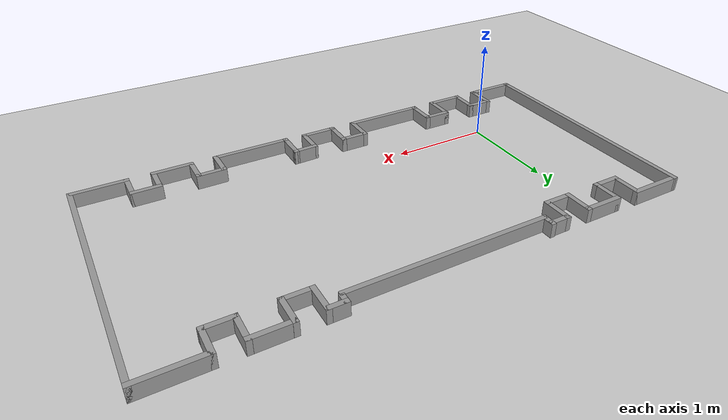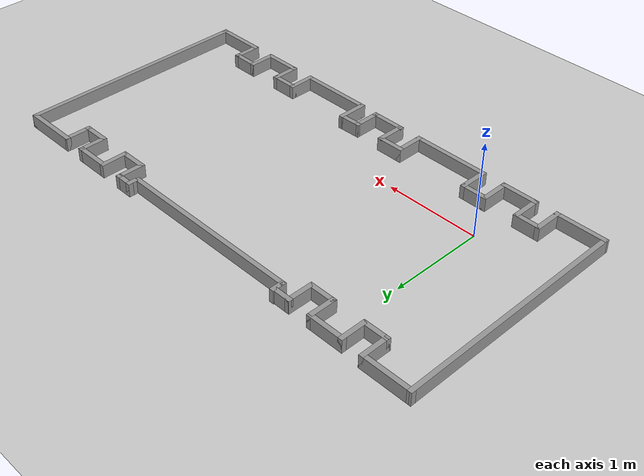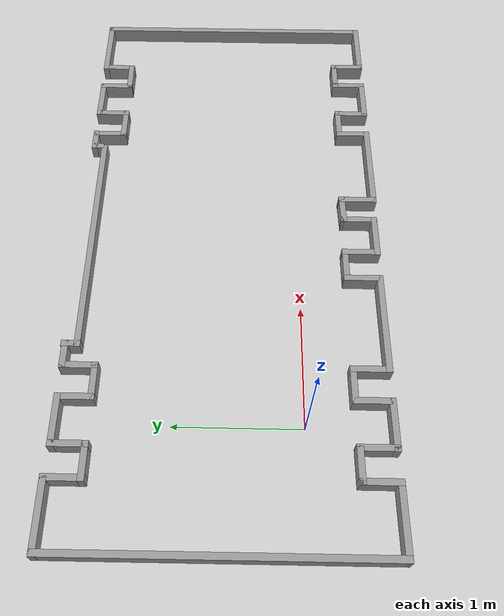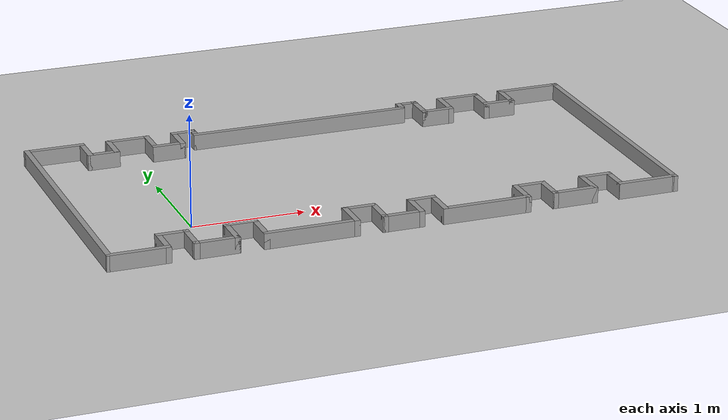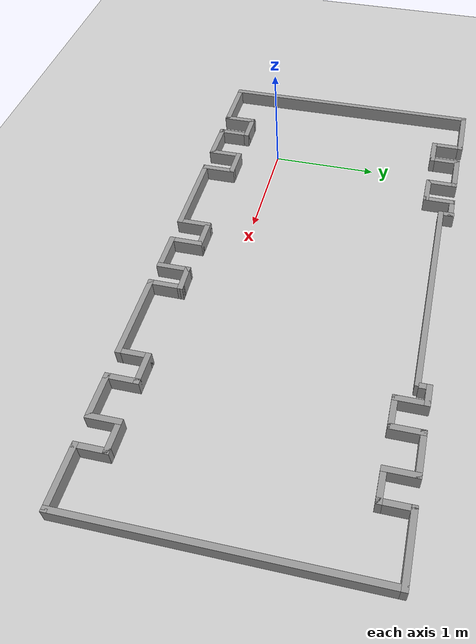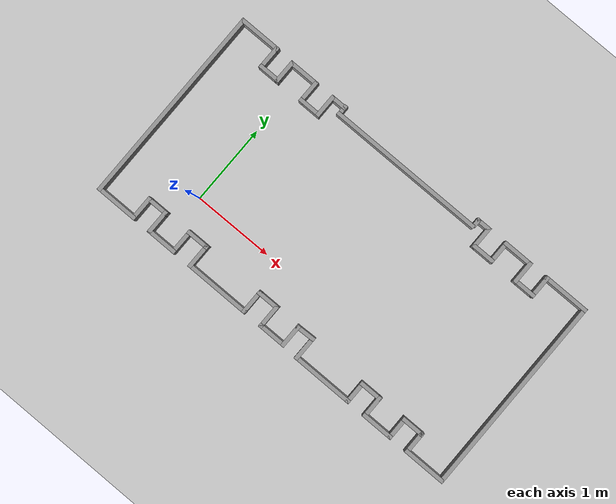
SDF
<sdf version="1.6">
 <world name="default">
  <model name="ground_plane">
   <static>1</static>
   <link name="link">
    <collision name="collision">
     <geometry><plane><normal>0 0 1</normal><size>100 100</size></plane></geometry>
     <surface>
      <contact><collide_bitmask>65535</collide_bitmask></contact>
      <friction><ode><mu>100</mu><mu2>50</mu2></ode></friction>
     </surface>
    </collision>
    <visual name="visual">
     <cast_shadows>0</cast_shadows>
     <geometry><plane><normal>0 0 1</normal><size>100 100</size></plane></geometry>
     <material>
      <script><uri>file://media/materials/scripts/gazebo.material</uri><name>Gazebo/Grey</name></script>
     </material>
    </visual>
   </link>
  </model>
  <light name="sun" type="directional">
   <pose>0 0 10 0 -0 0</pose>
   <diffuse>0.8 0.8 0.8 1</diffuse>
   <specular>0.2 0.2 0.2 1</specular>
   <attenuation>
    <range>1000</range>
    <constant>0.9</constant>
    <linear>0.01</linear>
    <quadratic>0.001</quadratic>
   </attenuation>
   <direction>-0.5 0.1 -0.9</direction>
  </light>
  <gravity>0 0 -9.8</gravity>
  <magnetic_field>6e-06 2.3e-05 -4.2e-05</magnetic_field>
  <atmosphere type="adiabatic"/>
  <physics name="default_physics" default="0" type="ode">
   <max_step_size>0.001</max_step_size>
   <real_time_factor>1</real_time_factor>
   <real_time_update_rate>1000</real_time_update_rate>
  </physics>
  <scene><ambient>0.4 0.4 0.4 1</ambient><background>0.7 0.7 0.7 1</background><shadows>1</shadows></scene>
  <audio><device>default</device></audio>
  <spherical_coordinates>
   <surface_model>EARTH_WGS84</surface_model>
   <latitude_deg>0</latitude_deg>
   <longitude_deg>0</longitude_deg>
   <elevation>0</elevation>
   <heading_deg>0</heading_deg>
  </spherical_coordinates>
  <model name="type2">
   <pose>1.61163 0.598256 0 0 -0 0</pose>
   <link name="Wall_0">
    <collision name="Wall_0_Collision">
     <geometry><box><size>0.545377 0.05 0.14</size></box></geometry>
     <pose>0 0 0.07 0 -0 0</pose>
    </collision>
    <visual name="Wall_0_Visual">
     <pose>0 0 0.07 0 -0 0</pose>
     <geometry><box><size>0.545377 0.05 0.14</size></box></geometry>
     <material>
      <script><uri>file://media/materials/scripts/gazebo.material</uri><name>Gazebo/Grey</name></script>
      <ambient>1 1 1 1</ambient>
     </material>
     <meta><layer>0</layer></meta>
    </visual>
    <pose>-2.27491 1.25397 0 0 -0 0</pose>
   </link>
   <link name="Wall_100">
    <collision name="Wall_100_Collision">
     <geometry><box><size>0.3 0.05 0.14</size></box></geometry>
     <pose>0 0 0.07 0 -0 0</pose>
    </collision>
    <visual name="Wall_100_Visual">
     <pose>0 0 0.07 0 -0 0</pose>
     <geometry><box><size>0.3 0.05 0.14</size></box></geometry>
     <material>
      <script><uri>file://media/materials/scripts/gazebo.material</uri><name>Gazebo/Grey</name></script>
      <ambient>1 1 1 1</ambient>
     </material>
     <meta><layer>0</layer></meta>
    </visual>
    <pose>1.11659 1.11397 0 0 -0 -1.5708</pose>
   </link>
   <link name="Wall_102">
    <collision name="Wall_102_Collision">
     <geometry><box><size>0.2 0.05 0.14</size></box></geometry>
     <pose>0 0 0.07 0 -0 0</pose>
    </collision>
    <visual name="Wall_102_Visual">
     <pose>0 0 0.07 0 -0 0</pose>
     <geometry><box><size>0.2 0.05 0.14</size></box></geometry>
     <material>
      <script><uri>file://media/materials/scripts/gazebo.material</uri><name>Gazebo/Grey</name></script>
      <ambient>1 1 1 1</ambient>
     </material>
     <meta><layer>0</layer></meta>
    </visual>
    <pose>1.04159 1.23897 0 0 -0 3.14159</pose>
   </link>
   <link name="Wall_114">
    <collision name="Wall_114_Collision">
     <geometry><box><size>0.11 0.05 0.14</size></box></geometry>
     <pose>0 0 0.07 0 -0 0</pose>
    </collision>
    <visual name="Wall_114_Visual">
     <pose>0 0 0.07 0 -0 0</pose>
     <geometry><box><size>0.11 0.05 0.14</size></box></geometry>
     <material>
      <script><uri>file://media/materials/scripts/gazebo.material</uri><name>Gazebo/Grey</name></script>
      <ambient>1 1 1 1</ambient>
     </material>
     <meta><layer>0</layer></meta>
    </visual>
    <pose>0.966594 1.20897 0 0 -0 -1.5708</pose>
   </link>
   <link name="Wall_116">
    <collision name="Wall_116_Collision">
     <geometry><box><size>2.01 0.05 0.14</size></box></geometry>
     <pose>0 0 0.07 0 -0 0</pose>
    </collision>
    <visual name="Wall_116_Visual">
     <pose>0 0 0.07 0 -0 0</pose>
     <geometry><box><size>2.01 0.05 0.14</size></box></geometry>
     <material>
      <script><uri>file://media/materials/scripts/gazebo.material</uri><name>Gazebo/Grey</name></script>
      <ambient>1 1 1 1</ambient>
     </material>
     <meta><layer>0</layer></meta>
    </visual>
    <pose>-0.027406 1.14697 0 0 -0 0</pose>
   </link>
   <link name="Wall_118">
    <collision name="Wall_118_Collision">
     <geometry><box><size>0.15 0.05 0.14</size></box></geometry>
     <pose>0 0 0.07 0 -0 0</pose>
    </collision>
    <visual name="Wall_118_Visual">
     <pose>0 0 0.07 0 -0 0</pose>
     <geometry><box><size>0.15 0.05 0.14</size></box></geometry>
     <material>
      <script><uri>file://media/materials/scripts/gazebo.material</uri><name>Gazebo/Grey</name></script>
      <ambient>1 1 1 1</ambient>
     </material>
     <meta><layer>0</layer></meta>
    </visual>
    <pose>-1.00741 1.19697 0 0 -0 1.5708</pose>
   </link>
   <link name="Wall_160">
    <collision name="Wall_160_Collision">
     <geometry><box><size>0.22 0.05 0.14</size></box></geometry>
     <pose>0 0 0.07 0 -0 0</pose>
    </collision>
    <visual name="Wall_160_Visual">
     <pose>0 0 0.07 0 -0 0</pose>
     <geometry><box><size>0.22 0.05 0.14</size></box></geometry>
     <material>
      <script><uri>file://media/materials/scripts/gazebo.material</uri><name>Gazebo/Grey</name></script>
      <ambient>1 1 1 1</ambient>
     </material>
     <meta><layer>0</layer></meta>
    </visual>
    <pose>-1.09941 1.23897 0 0 -0 0</pose>
   </link>
   <link name="Wall_162">
    <collision name="Wall_162_Collision">
     <geometry><box><size>0.3 0.05 0.14</size></box></geometry>
     <pose>0 0 0.07 0 -0 0</pose>
    </collision>
    <visual name="Wall_162_Visual">
     <pose>0 0 0.07 0 -0 0</pose>
     <geometry><box><size>0.3 0.05 0.14</size></box></geometry>
     <material>
      <script><uri>file://media/materials/scripts/gazebo.material</uri><name>Gazebo/Grey</name></script>
      <ambient>1 1 1 1</ambient>
     </material>
     <meta><layer>0</layer></meta>
    </visual>
    <pose>-1.18441 1.11397 0 0 -0 1.5708</pose>
   </link>
   <link name="Wall_164">
    <collision name="Wall_164_Collision">
     <geometry><box><size>0.3 0.05 0.14</size></box></geometry>
     <pose>0 0 0.07 0 -0 0</pose>
    </collision>
    <visual name="Wall_164_Visual">
     <pose>0 0 0.07 0 -0 0</pose>
     <geometry><box><size>0.3 0.05 0.14</size></box></geometry>
     <material>
      <script><uri>file://media/materials/scripts/gazebo.material</uri><name>Gazebo/Grey</name></script>
      <ambient>1 1 1 1</ambient>
     </material>
     <meta><layer>0</layer></meta>
    </visual>
    <pose>-1.30941 0.98897 0 0 -0 3.14159</pose>
   </link>
   <link name="Wall_167">
    <collision name="Wall_167_Collision">
     <geometry><box><size>0.3 0.05 0.14</size></box></geometry>
     <pose>0 0 0.07 0 -0 0</pose>
    </collision>
    <visual name="Wall_167_Visual">
     <pose>0 0 0.07 0 -0 0</pose>
     <geometry><box><size>0.3 0.05 0.14</size></box></geometry>
     <material>
      <script><uri>file://media/materials/scripts/gazebo.material</uri><name>Gazebo/Grey</name></script>
      <ambient>1 1 1 1</ambient>
     </material>
     <meta><layer>0</layer></meta>
    </visual>
    <pose>-1.43441 1.11397 0 0 -0 -1.5708</pose>
   </link>
   <link name="Wall_169">
    <collision name="Wall_169_Collision">
     <geometry><box><size>0.403 0.05 0.14</size></box></geometry>
     <pose>0 0 0.07 0 -0 0</pose>
    </collision>
    <visual name="Wall_169_Visual">
     <pose>0 0 0.07 0 -0 0</pose>
     <geometry><box><size>0.403 0.05 0.14</size></box></geometry>
     <material>
      <script><uri>file://media/materials/scripts/gazebo.material</uri><name>Gazebo/Grey</name></script>
      <ambient>1 1 1 1</ambient>
     </material>
     <meta><layer>0</layer></meta>
    </visual>
    <pose>-1.61091 1.23897 0 0 -0 0</pose>
   </link>
   <link name="Wall_17">
    <collision name="Wall_17_Collision">
     <geometry><box><size>0.318 0.05 0.14</size></box></geometry>
     <pose>0 0 0.07 0 -0 0</pose>
    </collision>
    <visual name="Wall_17_Visual">
     <pose>0 0 0.07 0 -0 0</pose>
     <geometry><box><size>0.318 0.05 0.14</size></box></geometry>
     <material>
      <script><uri>file://media/materials/scripts/gazebo.material</uri><name>Gazebo/Grey</name></script>
      <ambient>1 1 1 1</ambient>
     </material>
     <meta><layer>0</layer></meta>
    </visual>
    <pose>-1.77741 -1.10703 0 0 -0 1.5708</pose>
   </link>
   <link name="Wall_171">
    <collision name="Wall_171_Collision">
     <geometry><box><size>0.3 0.05 0.14</size></box></geometry>
     <pose>0 0 0.07 0 -0 0</pose>
    </collision>
    <visual name="Wall_171_Visual">
     <pose>0 0 0.07 0 -0 0</pose>
     <geometry><box><size>0.3 0.05 0.14</size></box></geometry>
     <material>
      <script><uri>file://media/materials/scripts/gazebo.material</uri><name>Gazebo/Grey</name></script>
      <ambient>1 1 1 1</ambient>
     </material>
     <meta><layer>0</layer></meta>
    </visual>
    <pose>-1.78741 1.11397 0 0 -0 -1.5708</pose>
   </link>
   <link name="Wall_174">
    <collision name="Wall_174_Collision">
     <geometry><box><size>0.29 0.05 0.14</size></box></geometry>
     <pose>0 0 0.07 0 -0 0</pose>
    </collision>
    <visual name="Wall_174_Visual">
     <pose>0 0 0.07 0 -0 0</pose>
     <geometry><box><size>0.29 0.05 0.14</size></box></geometry>
     <material>
      <script><uri>file://media/materials/scripts/gazebo.material</uri><name>Gazebo/Grey</name></script>
      <ambient>1 1 1 1</ambient>
     </material>
     <meta><layer>0</layer></meta>
    </visual>
    <pose>-1.90741 0.98897 0 0 -0 0</pose>
   </link>
   <link name="Wall_176">
    <collision name="Wall_176_Collision">
     <geometry><box><size>0.315 0.05 0.14</size></box></geometry>
     <pose>0 0 0.07 0 -0 0</pose>
    </collision>
    <visual name="Wall_176_Visual">
     <pose>0 0 0.07 0 -0 0</pose>
     <geometry><box><size>0.315 0.05 0.14</size></box></geometry>
     <material>
      <script><uri>file://media/materials/scripts/gazebo.material</uri><name>Gazebo/Grey</name></script>
      <ambient>1 1 1 1</ambient>
     </material>
     <meta><layer>0</layer></meta>
    </visual>
    <pose>-2.02741 1.12147 0 0 -0 1.5708</pose>
   </link>
   <link name="Wall_19">
    <collision name="Wall_19_Collision">
     <geometry><box><size>0.4 0.05 0.14</size></box></geometry>
     <pose>0 0 0.07 0 -0 0</pose>
    </collision>
    <visual name="Wall_19_Visual">
     <pose>0 0 0.07 0 -0 0</pose>
     <geometry><box><size>0.4 0.05 0.14</size></box></geometry>
     <material>
      <script><uri>file://media/materials/scripts/gazebo.material</uri><name>Gazebo/Grey</name></script>
      <ambient>1 1 1 1</ambient>
     </material>
     <meta><layer>0</layer></meta>
    </visual>
    <pose>-1.60241 -1.24103 0 0 -0 0</pose>
   </link>
   <link name="Wall_2">
    <collision name="Wall_2_Collision">
     <geometry><box><size>2.54601 0.05 0.14</size></box></geometry>
     <pose>0 0 0.07 0 -0 0</pose>
    </collision>
    <visual name="Wall_2_Visual">
     <pose>0 0 0.07 0 -0 0</pose>
     <geometry><box><size>2.54601 0.05 0.14</size></box></geometry>
     <material>
      <script><uri>file://media/materials/scripts/gazebo.material</uri><name>Gazebo/Grey</name></script>
      <ambient>1 1 1 1</ambient>
     </material>
     <meta><layer>0</layer></meta>
    </visual>
    <pose>-2.51941 0.00597 0 0 -0 -1.56839</pose>
   </link>
   <link name="Wall_21">
    <collision name="Wall_21_Collision">
     <geometry><box><size>0.325 0.05 0.14</size></box></geometry>
     <pose>0 0 0.07 0 -0 0</pose>
    </collision>
    <visual name="Wall_21_Visual">
     <pose>0 0 0.07 0 -0 0</pose>
     <geometry><box><size>0.325 0.05 0.14</size></box></geometry>
     <material>
      <script><uri>file://media/materials/scripts/gazebo.material</uri><name>Gazebo/Grey</name></script>
      <ambient>1 1 1 1</ambient>
     </material>
     <meta><layer>0</layer></meta>
    </visual>
    <pose>-1.42741 -1.10353 0 0 -0 1.5708</pose>
   </link>
   <link name="Wall_25">
    <collision name="Wall_25_Collision">
     <geometry><box><size>0.3 0.05 0.14</size></box></geometry>
     <pose>0 0 0.07 0 -0 0</pose>
    </collision>
    <visual name="Wall_25_Visual">
     <pose>0 0 0.07 0 -0 0</pose>
     <geometry><box><size>0.3 0.05 0.14</size></box></geometry>
     <material>
      <script><uri>file://media/materials/scripts/gazebo.material</uri><name>Gazebo/Grey</name></script>
      <ambient>1 1 1 1</ambient>
     </material>
     <meta><layer>0</layer></meta>
    </visual>
    <pose>-1.30241 -0.96603 0 0 -0 3.14159</pose>
   </link>
   <link name="Wall_28">
    <collision name="Wall_28_Collision">
     <geometry><box><size>0.325 0.05 0.14</size></box></geometry>
     <pose>0 0 0.07 0 -0 0</pose>
    </collision>
    <visual name="Wall_28_Visual">
     <pose>0 0 0.07 0 -0 0</pose>
     <geometry><box><size>0.325 0.05 0.14</size></box></geometry>
     <material>
      <script><uri>file://media/materials/scripts/gazebo.material</uri><name>Gazebo/Grey</name></script>
      <ambient>1 1 1 1</ambient>
     </material>
     <meta><layer>0</layer></meta>
    </visual>
    <pose>-1.17741 -1.10353 0 0 -0 -1.5708</pose>
   </link>
   <link name="Wall_31">
    <collision name="Wall_31_Collision">
     <geometry><box><size>0.843 0.05 0.14</size></box></geometry>
     <pose>0 0 0.07 0 -0 0</pose>
    </collision>
    <visual name="Wall_31_Visual">
     <pose>0 0 0.07 0 -0 0</pose>
     <geometry><box><size>0.843 0.05 0.14</size></box></geometry>
     <material>
      <script><uri>file://media/materials/scripts/gazebo.material</uri><name>Gazebo/Grey</name></script>
      <ambient>1 1 1 1</ambient>
     </material>
     <meta><layer>0</layer></meta>
    </visual>
    <pose>-0.780906 -1.24103 0 0 -0 0</pose>
   </link>
   <link name="Wall_326">
    <collision name="Wall_326_Collision">
     <geometry><box><size>0.6 0.05 0.14</size></box></geometry>
     <pose>0 0 0.07 0 -0 0</pose>
    </collision>
    <visual name="Wall_326_Visual">
     <pose>0 0 0.07 0 -0 0</pose>
     <geometry><box><size>0.6 0.05 0.14</size></box></geometry>
     <material>
      <script><uri>file://media/materials/scripts/gazebo.material</uri><name>Gazebo/Grey</name></script>
      <ambient>1 1 1 1</ambient>
     </material>
     <meta><layer>0</layer></meta>
    </visual>
    <pose>2.24759 1.23897 0 0 -0 0</pose>
   </link>
   <link name="Wall_329">
    <collision name="Wall_329_Collision">
     <geometry><box><size>0.416 0.05 0.14</size></box></geometry>
     <pose>0 0 0.07 0 -0 0</pose>
    </collision>
    <visual name="Wall_329_Visual">
     <pose>0 0 0.07 0 -0 0</pose>
     <geometry><box><size>0.416 0.05 0.14</size></box></geometry>
     <material>
      <script><uri>file://media/materials/scripts/gazebo.material</uri><name>Gazebo/Grey</name></script>
      <ambient>1 1 1 1</ambient>
     </material>
     <meta><layer>0</layer></meta>
    </visual>
    <pose>1.58559 -1.25403 0 0 -0 3.14159</pose>
   </link>
   <link name="Wall_33">
    <collision name="Wall_33_Collision">
     <geometry><box><size>0.318 0.05 0.14</size></box></geometry>
     <pose>0 0 0.07 0 -0 0</pose>
    </collision>
    <visual name="Wall_33_Visual">
     <pose>0 0 0.07 0 -0 0</pose>
     <geometry><box><size>0.318 0.05 0.14</size></box></geometry>
     <material>
      <script><uri>file://media/materials/scripts/gazebo.material</uri><name>Gazebo/Grey</name></script>
      <ambient>1 1 1 1</ambient>
     </material>
     <meta><layer>0</layer></meta>
    </visual>
    <pose>-0.384406 -1.10703 0 0 -0 1.5708</pose>
   </link>
   <link name="Wall_36">
    <collision name="Wall_36_Collision">
     <geometry><box><size>0.3 0.05 0.14</size></box></geometry>
     <pose>0 0 0.07 0 -0 0</pose>
    </collision>
    <visual name="Wall_36_Visual">
     <pose>0 0 0.07 0 -0 0</pose>
     <geometry><box><size>0.3 0.05 0.14</size></box></geometry>
     <material>
      <script><uri>file://media/materials/scripts/gazebo.material</uri><name>Gazebo/Grey</name></script>
      <ambient>1 1 1 1</ambient>
     </material>
     <meta><layer>0</layer></meta>
    </visual>
    <pose>-0.259406 -0.97303 0 0 -0 0</pose>
   </link>
   <link name="Wall_38">
    <collision name="Wall_38_Collision">
     <geometry><box><size>0.318 0.05 0.14</size></box></geometry>
     <pose>0 0 0.07 0 -0 0</pose>
    </collision>
    <visual name="Wall_38_Visual">
     <pose>0 0 0.07 0 -0 0</pose>
     <geometry><box><size>0.318 0.05 0.14</size></box></geometry>
     <material>
      <script><uri>file://media/materials/scripts/gazebo.material</uri><name>Gazebo/Grey</name></script>
      <ambient>1 1 1 1</ambient>
     </material>
     <meta><layer>0</layer></meta>
    </visual>
    <pose>-0.134406 -1.10703 0 0 -0 -1.5708</pose>
   </link>
   <link name="Wall_4">
    <collision name="Wall_4_Collision">
     <geometry><box><size>0.55 0.05 0.14</size></box></geometry>
     <pose>0 0 0.07 0 -0 0</pose>
    </collision>
    <visual name="Wall_4_Visual">
     <pose>0 0 0.07 0 -0 0</pose>
     <geometry><box><size>0.55 0.05 0.14</size></box></geometry>
     <material>
      <script><uri>file://media/materials/scripts/gazebo.material</uri><name>Gazebo/Grey</name></script>
      <ambient>1 1 1 1</ambient>
     </material>
     <meta><layer>0</layer></meta>
    </visual>
    <pose>-2.26641 -1.24203 0 0 -0 0</pose>
   </link>
   <link name="Wall_41">
    <collision name="Wall_41_Collision">
     <geometry><box><size>0.377 0.05 0.14</size></box></geometry>
     <pose>0 0 0.07 0 -0 0</pose>
    </collision>
    <visual name="Wall_41_Visual">
     <pose>0 0 0.07 0 -0 0</pose>
     <geometry><box><size>0.377 0.05 0.14</size></box></geometry>
     <material>
      <script><uri>file://media/materials/scripts/gazebo.material</uri><name>Gazebo/Grey</name></script>
      <ambient>1 1 1 1</ambient>
     </material>
     <meta><layer>0</layer></meta>
    </visual>
    <pose>0.029094 -1.24103 0 0 -0 0</pose>
   </link>
   <link name="Wall_43">
    <collision name="Wall_43_Collision">
     <geometry><box><size>0.305259 0.05 0.14</size></box></geometry>
     <pose>0 0 0.07 0 -0 0</pose>
    </collision>
    <visual name="Wall_43_Visual">
     <pose>0 0 0.07 0 -0 0</pose>
     <geometry><box><size>0.305259 0.05 0.14</size></box></geometry>
     <material>
      <script><uri>file://media/materials/scripts/gazebo.material</uri><name>Gazebo/Grey</name></script>
      <ambient>1 1 1 1</ambient>
     </material>
     <meta><layer>0</layer></meta>
    </visual>
    <pose>0.192594 -1.11353 0 0 -0 1.5708</pose>
   </link>
   <link name="Wall_46">
    <collision name="Wall_46_Collision">
     <geometry><box><size>0.26 0.05 0.14</size></box></geometry>
     <pose>0 0 0.07 0 -0 0</pose>
    </collision>
    <visual name="Wall_46_Visual">
     <pose>0 0 0.07 0 -0 0</pose>
     <geometry><box><size>0.26 0.05 0.14</size></box></geometry>
     <material>
      <script><uri>file://media/materials/scripts/gazebo.material</uri><name>Gazebo/Grey</name></script>
      <ambient>1 1 1 1</ambient>
     </material>
     <meta><layer>0</layer></meta>
    </visual>
    <pose>0.297594 -0.98253 0 0 -0 0.033321</pose>
   </link>
   <link name="Wall_52">
    <collision name="Wall_52_Collision">
     <geometry><box><size>0.324614 0.05 0.14</size></box></geometry>
     <pose>0 0 0.07 0 -0 0</pose>
    </collision>
    <visual name="Wall_52_Visual">
     <pose>0 0 0.07 0 -0 0</pose>
     <geometry><box><size>0.324614 0.05 0.14</size></box></geometry>
     <material>
      <script><uri>file://media/materials/scripts/gazebo.material</uri><name>Gazebo/Grey</name></script>
      <ambient>1 1 1 1</ambient>
     </material>
     <meta><layer>0</layer></meta>
    </visual>
    <pose>0.402594 -1.11653 0 0 -0 -1.5708</pose>
   </link>
   <link name="Wall_56">
    <collision name="Wall_56_Collision">
     <geometry><box><size>0.8 0.05 0.14</size></box></geometry>
     <pose>0 0 0.07 0 -0 0</pose>
    </collision>
    <visual name="Wall_56_Visual">
     <pose>0 0 0.07 0 -0 0</pose>
     <geometry><box><size>0.8 0.05 0.14</size></box></geometry>
     <material>
      <script><uri>file://media/materials/scripts/gazebo.material</uri><name>Gazebo/Grey</name></script>
      <ambient>1 1 1 1</ambient>
     </material>
     <meta><layer>0</layer></meta>
    </visual>
    <pose>0.777594 -1.25403 0 0 -0 0</pose>
   </link>
   <link name="Wall_58">
    <collision name="Wall_58_Collision">
     <geometry><box><size>0.3 0.05 0.14</size></box></geometry>
     <pose>0 0 0.07 0 -0 0</pose>
    </collision>
    <visual name="Wall_58_Visual">
     <pose>0 0 0.07 0 -0 0</pose>
     <geometry><box><size>0.3 0.05 0.14</size></box></geometry>
     <material>
      <script><uri>file://media/materials/scripts/gazebo.material</uri><name>Gazebo/Grey</name></script>
      <ambient>1 1 1 1</ambient>
     </material>
     <meta><layer>0</layer></meta>
    </visual>
    <pose>1.15259 -1.12903 0 0 -0 1.5708</pose>
   </link>
   <link name="Wall_6">
    <collision name="Wall_6_Collision">
     <geometry><box><size>0.31903 0.05 0.14</size></box></geometry>
     <pose>0 0 0.07 0 -0 0</pose>
    </collision>
    <visual name="Wall_6_Visual">
     <pose>0 0 0.07 0 -0 0</pose>
     <geometry><box><size>0.31903 0.05 0.14</size></box></geometry>
     <material>
      <script><uri>file://media/materials/scripts/gazebo.material</uri><name>Gazebo/Grey</name></script>
      <ambient>1 1 1 1</ambient>
     </material>
     <meta><layer>0</layer></meta>
    </visual>
    <pose>-2.01641 -1.10753 0 0 -0 1.5708</pose>
   </link>
   <link name="Wall_61">
    <collision name="Wall_61_Collision">
     <geometry><box><size>0.3 0.05 0.14</size></box></geometry>
     <pose>0 0 0.07 0 -0 0</pose>
    </collision>
    <visual name="Wall_61_Visual">
     <pose>0 0 0.07 0 -0 0</pose>
     <geometry><box><size>0.3 0.05 0.14</size></box></geometry>
     <material>
      <script><uri>file://media/materials/scripts/gazebo.material</uri><name>Gazebo/Grey</name></script>
      <ambient>1 1 1 1</ambient>
     </material>
     <meta><layer>0</layer></meta>
    </visual>
    <pose>1.27759 -1.00403 0 0 -0 0</pose>
   </link>
   <link name="Wall_65">
    <collision name="Wall_65_Collision">
     <geometry><box><size>0.3 0.05 0.14</size></box></geometry>
     <pose>0 0 0.07 0 -0 0</pose>
    </collision>
    <visual name="Wall_65_Visual">
     <pose>0 0 0.07 0 -0 0</pose>
     <geometry><box><size>0.3 0.05 0.14</size></box></geometry>
     <material>
      <script><uri>file://media/materials/scripts/gazebo.material</uri><name>Gazebo/Grey</name></script>
      <ambient>1 1 1 1</ambient>
     </material>
     <meta><layer>0</layer></meta>
    </visual>
    <pose>1.40259 -1.12903 0 0 -0 -1.5708</pose>
   </link>
   <link name="Wall_73">
    <collision name="Wall_73_Collision">
     <geometry><box><size>0.3 0.05 0.14</size></box></geometry>
     <pose>0 0 0.07 0 -0 0</pose>
    </collision>
    <visual name="Wall_73_Visual">
     <pose>0 0 0.07 0 -0 0</pose>
     <geometry><box><size>0.3 0.05 0.14</size></box></geometry>
     <material>
      <script><uri>file://media/materials/scripts/gazebo.material</uri><name>Gazebo/Grey</name></script>
      <ambient>1 1 1 1</ambient>
     </material>
     <meta><layer>0</layer></meta>
    </visual>
    <pose>1.76859 -1.12903 0 0 -0 1.5708</pose>
   </link>
   <link name="Wall_76">
    <collision name="Wall_76_Collision">
     <geometry><box><size>0.3 0.05 0.14</size></box></geometry>
     <pose>0 0 0.07 0 -0 0</pose>
    </collision>
    <visual name="Wall_76_Visual">
     <pose>0 0 0.07 0 -0 0</pose>
     <geometry><box><size>0.3 0.05 0.14</size></box></geometry>
     <material>
      <script><uri>file://media/materials/scripts/gazebo.material</uri><name>Gazebo/Grey</name></script>
      <ambient>1 1 1 1</ambient>
     </material>
     <meta><layer>0</layer></meta>
    </visual>
    <pose>1.89359 -1.00403 0 0 -0 3.14159</pose>
   </link>
   <link name="Wall_78">
    <collision name="Wall_78_Collision">
     <geometry><box><size>0.3 0.05 0.14</size></box></geometry>
     <pose>0 0 0.07 0 -0 0</pose>
    </collision>
    <visual name="Wall_78_Visual">
     <pose>0 0 0.07 0 -0 0</pose>
     <geometry><box><size>0.3 0.05 0.14</size></box></geometry>
     <material>
      <script><uri>file://media/materials/scripts/gazebo.material</uri><name>Gazebo/Grey</name></script>
      <ambient>1 1 1 1</ambient>
     </material>
     <meta><layer>0</layer></meta>
    </visual>
    <pose>2.01859 -1.12903 0 0 -0 -1.5708</pose>
   </link>
   <link name="Wall_81">
    <collision name="Wall_81_Collision">
     <geometry><box><size>0.554 0.05 0.14</size></box></geometry>
     <pose>0 0 0.07 0 -0 0</pose>
    </collision>
    <visual name="Wall_81_Visual">
     <pose>0 0 0.07 0 -0 0</pose>
     <geometry><box><size>0.554 0.05 0.14</size></box></geometry>
     <material>
      <script><uri>file://media/materials/scripts/gazebo.material</uri><name>Gazebo/Grey</name></script>
      <ambient>1 1 1 1</ambient>
     </material>
     <meta><layer>0</layer></meta>
    </visual>
    <pose>2.27059 -1.25403 0 0 -0 3.14159</pose>
   </link>
   <link name="Wall_83">
    <collision name="Wall_83_Collision">
     <geometry><box><size>2.543 0.05 0.14</size></box></geometry>
     <pose>0 0 0.07 0 -0 0</pose>
    </collision>
    <visual name="Wall_83_Visual">
     <pose>0 0 0.07 0 -0 0</pose>
     <geometry><box><size>2.543 0.05 0.14</size></box></geometry>
     <material>
      <script><uri>file://media/materials/scripts/gazebo.material</uri><name>Gazebo/Grey</name></script>
      <ambient>1 1 1 1</ambient>
     </material>
     <meta><layer>0</layer></meta>
    </visual>
    <pose>2.52259 -0.00753 0 0 -0 1.5708</pose>
   </link>
   <link name="Wall_87">
    <collision name="Wall_87_Collision">
     <geometry><box><size>0.3 0.05 0.14</size></box></geometry>
     <pose>0 0 0.07 0 -0 0</pose>
    </collision>
    <visual name="Wall_87_Visual">
     <pose>0 0 0.07 0 -0 0</pose>
     <geometry><box><size>0.3 0.05 0.14</size></box></geometry>
     <material>
      <script><uri>file://media/materials/scripts/gazebo.material</uri><name>Gazebo/Grey</name></script>
      <ambient>1 1 1 1</ambient>
     </material>
     <meta><layer>0</layer></meta>
    </visual>
    <pose>1.97259 1.11397 0 0 -0 -1.5708</pose>
   </link>
   <link name="Wall_9">
    <collision name="Wall_9_Collision">
     <geometry><box><size>0.289 0.05 0.14</size></box></geometry>
     <pose>0 0 0.07 0 -0 0</pose>
    </collision>
    <visual name="Wall_9_Visual">
     <pose>0 0 0.07 0 -0 0</pose>
     <geometry><box><size>0.289 0.05 0.14</size></box></geometry>
     <material>
      <script><uri>file://media/materials/scripts/gazebo.material</uri><name>Gazebo/Grey</name></script>
      <ambient>1 1 1 1</ambient>
     </material>
     <meta><layer>0</layer></meta>
    </visual>
    <pose>-1.89691 -0.97303 0 0 -0 0</pose>
   </link>
   <link name="Wall_90">
    <collision name="Wall_90_Collision">
     <geometry><box><size>0.3 0.05 0.14</size></box></geometry>
     <pose>0 0 0.07 0 -0 0</pose>
    </collision>
    <visual name="Wall_90_Visual">
     <pose>0 0 0.07 0 -0 0</pose>
     <geometry><box><size>0.3 0.05 0.14</size></box></geometry>
     <material>
      <script><uri>file://media/materials/scripts/gazebo.material</uri><name>Gazebo/Grey</name></script>
      <ambient>1 1 1 1</ambient>
     </material>
     <meta><layer>0</layer></meta>
    </visual>
    <pose>1.84759 0.98897 0 0 -0 0</pose>
   </link>
   <link name="Wall_92">
    <collision name="Wall_92_Collision">
     <geometry><box><size>0.3 0.05 0.14</size></box></geometry>
     <pose>0 0 0.07 0 -0 0</pose>
    </collision>
    <visual name="Wall_92_Visual">
     <pose>0 0 0.07 0 -0 0</pose>
     <geometry><box><size>0.3 0.05 0.14</size></box></geometry>
     <material>
      <script><uri>file://media/materials/scripts/gazebo.material</uri><name>Gazebo/Grey</name></script>
      <ambient>1 1 1 1</ambient>
     </material>
     <meta><layer>0</layer></meta>
    </visual>
    <pose>1.72259 1.11397 0 0 -0 -1.5708</pose>
   </link>
   <link name="Wall_94">
    <collision name="Wall_94_Collision">
     <geometry><box><size>0.4 0.05 0.14</size></box></geometry>
     <pose>0 0 0.07 0 -0 0</pose>
    </collision>
    <visual name="Wall_94_Visual">
     <pose>0 0 0.07 0 -0 0</pose>
     <geometry><box><size>0.4 0.05 0.14</size></box></geometry>
     <material>
      <script><uri>file://media/materials/scripts/gazebo.material</uri><name>Gazebo/Grey</name></script>
      <ambient>1 1 1 1</ambient>
     </material>
     <meta><layer>0</layer></meta>
    </visual>
    <pose>1.54759 1.23897 0 0 -0 3.14159</pose>
   </link>
   <link name="Wall_96">
    <collision name="Wall_96_Collision">
     <geometry><box><size>0.30088 0.05 0.14</size></box></geometry>
     <pose>0 0 0.07 0 -0 0</pose>
    </collision>
    <visual name="Wall_96_Visual">
     <pose>0 0 0.07 0 -0 0</pose>
     <geometry><box><size>0.30088 0.05 0.14</size></box></geometry>
     <material>
      <script><uri>file://media/materials/scripts/gazebo.material</uri><name>Gazebo/Grey</name></script>
      <ambient>1 1 1 1</ambient>
     </material>
     <meta><layer>0</layer></meta>
    </visual>
    <pose>1.37259 1.11397 0 0 -0 1.5708</pose>
   </link>
   <link name="Wall_98">
    <collision name="Wall_98_Collision">
     <geometry><box><size>0.306 0.05 0.14</size></box></geometry>
     <pose>0 0 0.07 0 -0 0</pose>
    </collision>
    <visual name="Wall_98_Visual">
     <pose>0 0 0.07 0 -0 0</pose>
     <geometry><box><size>0.306 0.05 0.14</size></box></geometry>
     <material>
      <script><uri>file://media/materials/scripts/gazebo.material</uri><name>Gazebo/Grey</name></script>
      <ambient>1 1 1 1</ambient>
     </material>
     <meta><layer>0</layer></meta>
    </visual>
    <pose>1.24459 0.98897 0 0 -0 0</pose>
   </link>
   <static>1</static>
  </model>
 </world>
</sdf>
